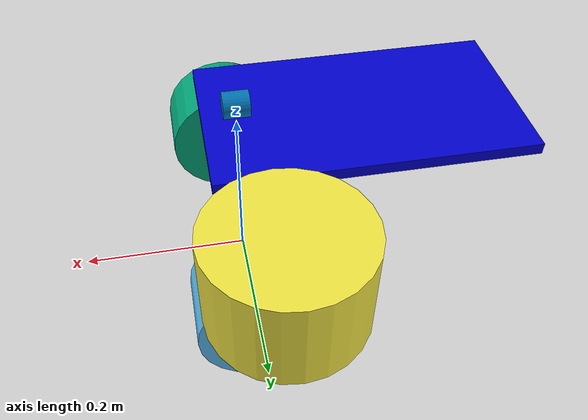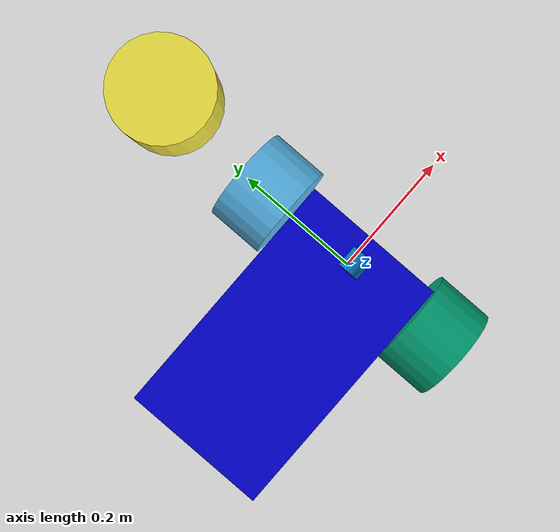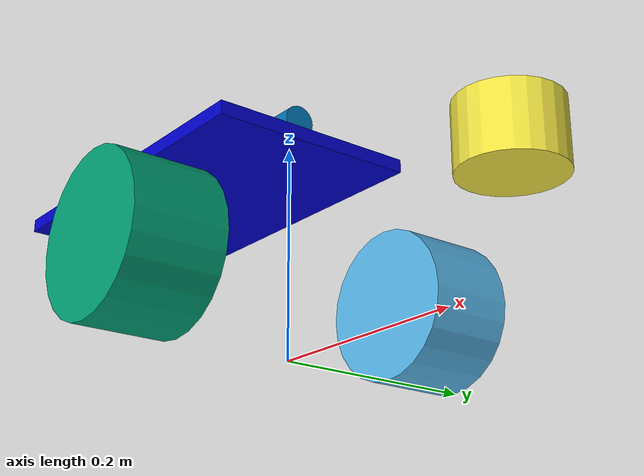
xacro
<?xml version="1.0"?>
<robot xmlns:xacro="http://www.ros.org/wiki/xacro" name="nomad">

    <!--
	 The definitions for the main pad of the rover, to which
	 everything else is connected. This is the "base_link"
     of the rover model.
	 -->
    <xacro:property name="mainPadLength"  value="0.356" />
    <xacro:property name="mainPadWidth"   value="0.203" />
    <xacro:property name="mainPadHeight"  value="0.013" />
    <xacro:property name="mainPadX" value="-0.139" />
    <xacro:property name="mainPadY" value="0.0" />
    <xacro:property name="mainPadZ" value="0.198" />

    <!--
	 The definitions for the cameras.
	 -->
    <xacro:property name="cameraRadius"   value="0.015" />
    <xacro:property name="cameraLength"   value="0.030" />
    <xacro:property name="cameraFX"       value="0.0" />
    <xacro:property name="cameraFY"       value="0.0" />
    <xacro:property name="cameraFZ"       value="0.026" />

    <!--
	 The definitions for the wheels.
	 -->
    <xacro:property name="wheelRadius"    value="0.073" />
    <xacro:property name="wheelWidth"     value="0.085" />
    <xacro:property name="wheelTrack"     value="0.31" />
    <xacro:property name="axleHeight"     value="${wheelRadius}" />

    <!--
	 The definitions for the lidar.
	 -->
    <xacro:property name="lidarLength"    value="0.085" />
    <xacro:property name="lidarRadius"    value="0.065" />
    <xacro:property name="lidarOriginX"   value="0.0" />
    <xacro:property name="lidarOriginY"   value="0.30" />
    <xacro:property name="lidarOriginZ"   value="0.30" />

    <!--
	 The definitions for the ultrasonic rangefinders.
	 -->
    <xacro:property name="ultraLength"    value="0.020" />
    <xacro:property name="ultraRadius"    value="0.008" />
    <xacro:property name="ultraOriginXF"  value="0.055" />
    <xacro:property name="ultraOriginXB"  value="-0.330" />
    <xacro:property name="ultraOriginY"   value="0.070" />
    <xacro:property name="ultraOriginZ"   value="0.187" />
    <xacro:property name="ultraUp"        value="-0.1" />
    <xacro:property name="ultraOut"       value="0.05" />

    <link name="base_link">
        <visual>
            <origin xyz="${mainPadX} ${mainPadY} ${mainPadZ}" rpy="0 0 0" />
            <geometry>
                <box size="${mainPadLength} ${mainPadWidth} ${mainPadHeight}" />
            </geometry>
            <material name="blue">
				<color rgba="0 0 .8 1"/>
			</material>
        </visual>
    </link>

    <joint name="base_link_to_right_wheel" type="fixed">
        <parent link="base_link"/>
        <child link="right_wheel"/>
        <origin xyz="0 ${wheelTrack/2} ${wheelRadius}"/>
    </joint>

    <link name="right_wheel">
        <visual>
            <origin xyz="0 0 0" rpy="1.57 0 0" />
            <geometry>
                <cylinder length="${wheelWidth}" radius="${wheelRadius}" />
            </geometry>
        </visual>
    </link>

    <joint name="base_link_to_left_wheel" type="fixed">
        <parent link="base_link"/>
        <child link="left_wheel"/>
        <origin xyz="0 -${wheelTrack/2} ${wheelRadius}"/>
    </joint>

    <link name="left_wheel">
        <visual>
            <origin xyz="0 0 0" rpy="1.57 0 0" />
            <geometry>
                <cylinder length="${wheelWidth}" radius="${wheelRadius}" />
            </geometry>
        </visual>
    </link>

    <joint name="base_link_to_laser" type="fixed">
        <parent link="base_link"/>
        <child link="laser"/>
        <origin xyz="${lidarOriginX} ${lidarOriginY} ${lidarOriginZ}"/>
    </joint>

    <link name="laser">
        <visual>
            <origin xyz="0 0 0" rpy="0 0 0" />
            <geometry>
                <cylinder length="${lidarLength}" radius="${lidarRadius}" />
            </geometry>
        </visual>
    </link>

    <joint name="base_link_to_camera_front" type="fixed">
        <parent link="base_link"/>
        <child link="camera_front"/>
        <origin
            xyz="${cameraFX} ${cameraFY} ${mainPadZ + cameraFZ}"
            rpy="-1.57 0 -1.57"
            />
    </joint>

    <link name="camera_front">
        <visual>
            <origin xyz="0 0 0" />
            <geometry>
                <cylinder length="${cameraLength}" radius="${cameraRadius}" />
            </geometry>
        </visual>
    </link>

</robot>
